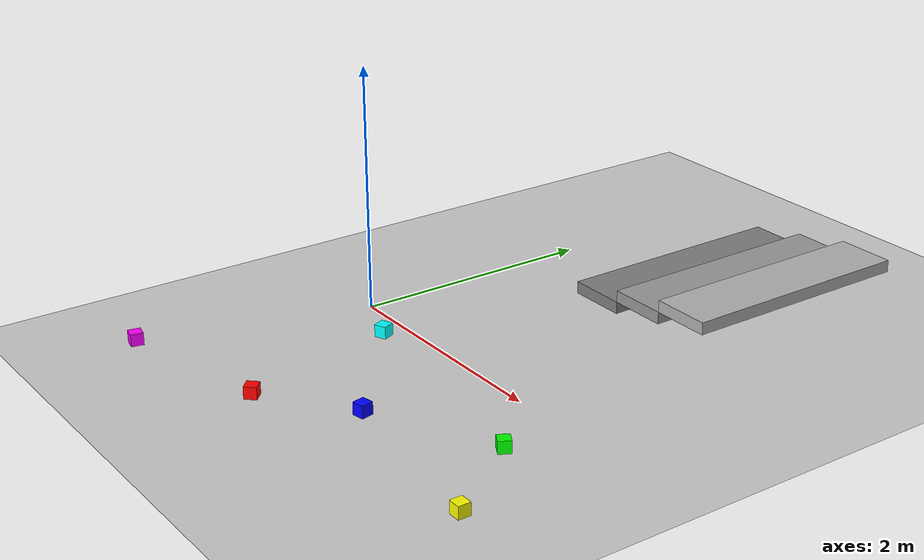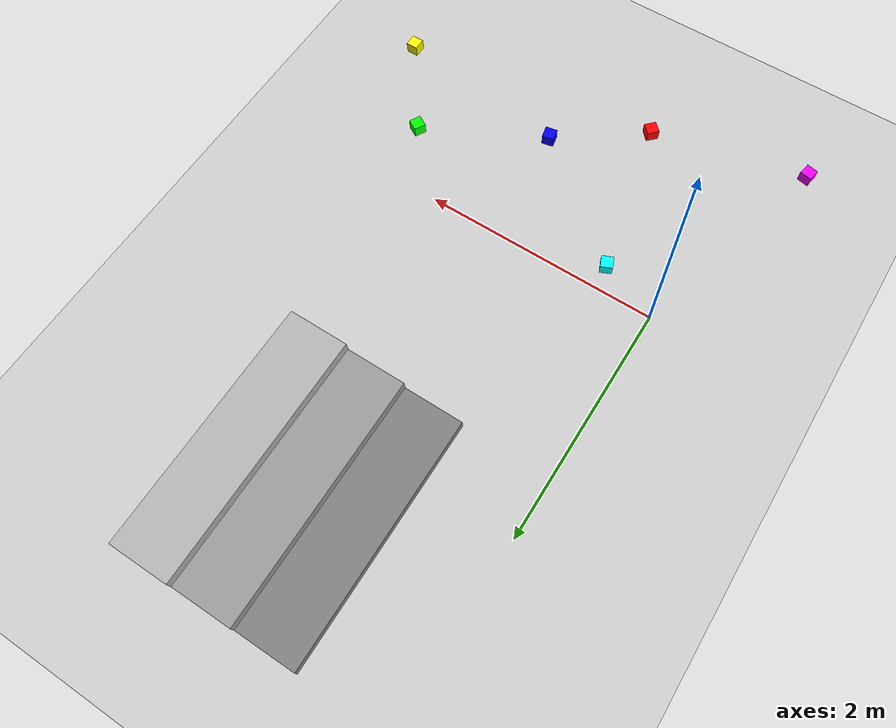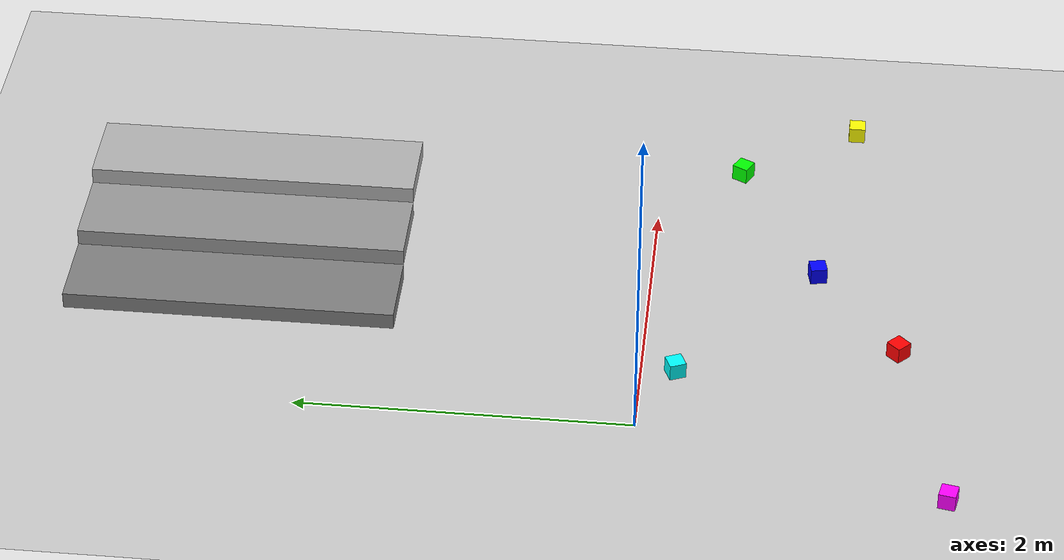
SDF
<?xml version="1.0"?>
<sdf version="1.6">
  <world name="default">

    <plugin filename="gz-sim-physics-system" name="gz::sim::systems::Physics"></plugin>
    <plugin filename="gz-sim-user-commands-system" name="gz::sim::systems::UserCommands"></plugin>
    <plugin filename="gz-sim-scene-broadcaster-system" name="gz::sim::systems::SceneBroadcaster"></plugin>
    <plugin filename="gz-sim-sensors-system" name="gz::sim::systems::Sensors">
      <render_engine>ogre2</render_engine>
    </plugin>
    <plugin filename="gz-sim-imu-system" name="gz::sim::systems::Imu"></plugin>

    <include>
      <uri>https://fuel.gazebosim.org/1.0/OpenRobotics/models/Sun</uri>
    </include>
    <include>
      <uri>https://fuel.gazebosim.org/1.0/OpenRobotics/models/Ground Plane</uri>
    </include>

    <model name="stairs">
      <static>true</static>
      <pose>1.0 2.5 0 0 0 0</pose>
      <link name="step_1">
        <pose>0 0 0.05 0 0 0</pose>
        <collision name="collision"><geometry><box><size>0.5 2.0 0.1</size></box></geometry></collision>
        <visual name="visual">
          <geometry><box><size>0.5 2.0 0.1</size></box></geometry>
          <material><ambient>0.5 0.5 0.5 1</ambient><diffuse>0.5 0.5 0.5 1</diffuse></material>
        </visual>
      </link>
      <link name="step_2">
        <pose>0.5 0 0.15 0 0 0</pose>
        <collision name="collision"><geometry><box><size>0.5 2.0 0.1</size></box></geometry></collision>
        <visual name="visual">
          <geometry><box><size>0.5 2.0 0.1</size></box></geometry>
          <material><ambient>0.6 0.6 0.6 1</ambient><diffuse>0.6 0.6 0.6 1</diffuse></material>
        </visual>
      </link>
      <link name="step_3">
        <pose>1.0 0 0.25 0 0 0</pose>
        <collision name="collision"><geometry><box><size>0.5 2.0 0.1</size></box></geometry></collision>
        <visual name="visual">
          <geometry><box><size>0.5 2.0 0.1</size></box></geometry>
          <material><ambient>0.7 0.7 0.7 1</ambient><diffuse>0.7 0.7 0.7 1</diffuse></material>
        </visual>
      </link>
    </model>

    <model name="cube_1">
      <static>true</static>
      <pose>1.5 -1.0 0.05 0 0 0.2</pose> <link name="link">
        <collision name="collision"><geometry><box><size>0.1 0.1 0.1</size></box></geometry></collision>
        <visual name="visual">
          <geometry><box><size>0.1 0.1 0.1</size></box></geometry>
          <material><ambient>0 0 1 1</ambient><diffuse>0 0 1 1</diffuse></material>
        </visual>
      </link>
    </model>

    <model name="cube_2">
      <static>true</static>
      <pose>2.5 -0.5 0.05 0 0 -0.5</pose>
      <link name="link">
        <collision name="collision"><geometry><box><size>0.1 0.1 0.1</size></box></geometry></collision>
        <visual name="visual">
          <geometry><box><size>0.1 0.1 0.1</size></box></geometry>
          <material><ambient>0 1 0 1</ambient><diffuse>0 1 0 1</diffuse></material>
        </visual>
      </link>
    </model>

    <model name="cube_3">
      <static>true</static>
      <pose>0.8 -1.5 0.05 0 0 0.8</pose>
      <link name="link">
        <collision name="collision"><geometry><box><size>0.1 0.1 0.1</size></box></geometry></collision>
        <visual name="visual">
          <geometry><box><size>0.1 0.1 0.1</size></box></geometry>
          <material><ambient>1 0 0 1</ambient><diffuse>1 0 0 1</diffuse></material>
        </visual>
      </link>
    </model>

    <model name="cube_4">
      <static>true</static>
      <pose>3.0 -1.2 0.05 0 0 0</pose>
      <link name="link">
        <collision name="collision"><geometry><box><size>0.1 0.1 0.1</size></box></geometry></collision>
        <visual name="visual">
          <geometry><box><size>0.1 0.1 0.1</size></box></geometry>
          <material><ambient>1 1 0 1</ambient><diffuse>1 1 0 1</diffuse></material>
        </visual>
      </link>
    </model>

    <model name="cube_5">
      <static>true</static>
      <pose>0.5 -0.2 0.05 0 0 0.4</pose>
      <link name="link">
        <collision name="collision"><geometry><box><size>0.1 0.1 0.1</size></box></geometry></collision>
        <visual name="visual">
          <geometry><box><size>0.1 0.1 0.1</size></box></geometry>
          <material><ambient>0 1 1 1</ambient><diffuse>0 1 1 1</diffuse></material>
        </visual>
      </link>
    </model>

    <model name="cube_6">
      <static>true</static>
      <pose>-0.5 -1.8 0.05 0 0 -0.2</pose>
      <link name="link">
        <collision name="collision"><geometry><box><size>0.1 0.1 0.1</size></box></geometry></collision>
        <visual name="visual">
          <geometry><box><size>0.1 0.1 0.1</size></box></geometry>
          <material><ambient>1 0 1 1</ambient><diffuse>1 0 1 1</diffuse></material>
        </visual>
      </link>
    </model>

    <gui fullscreen='0'>
      <camera name='user_camera'>
        <pose frame=''>-3.0 0.0 3.0 0 0.6 0</pose>
        <view_controller>orbit</view_controller>
        <projection_type>perspective</projection_type>
      </camera>
    </gui>

  </world>
</sdf>
